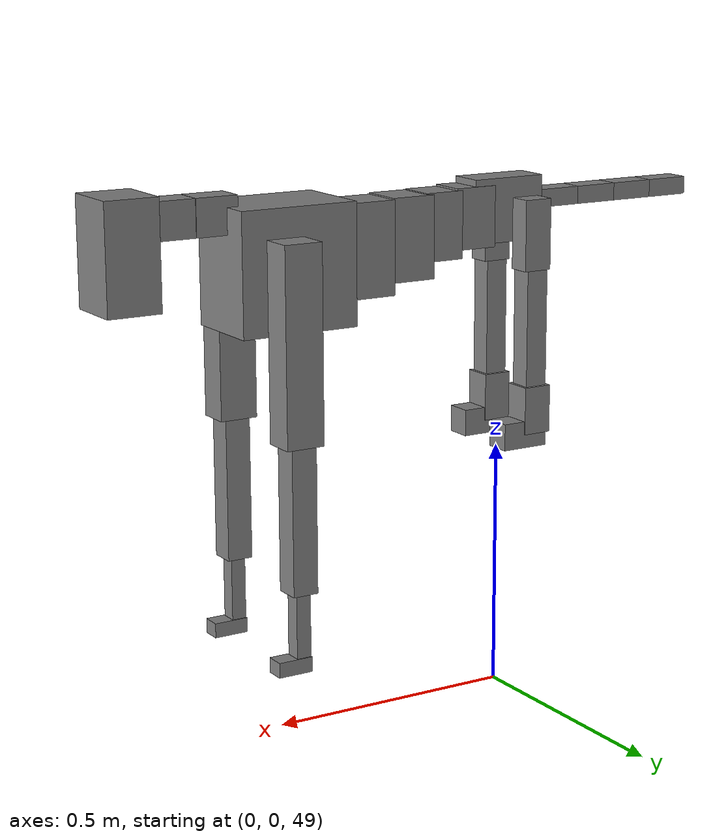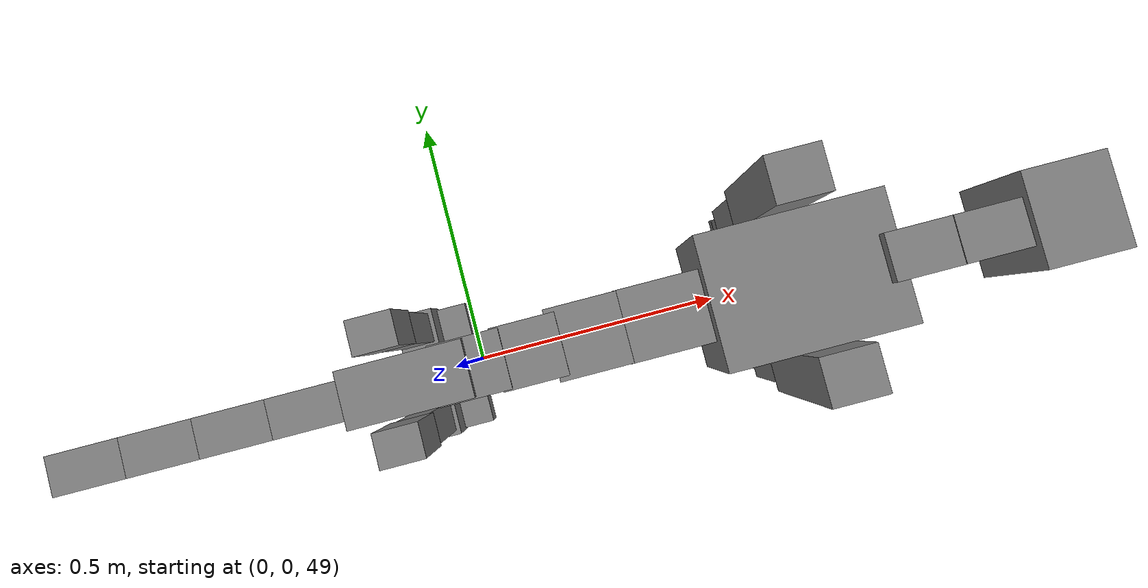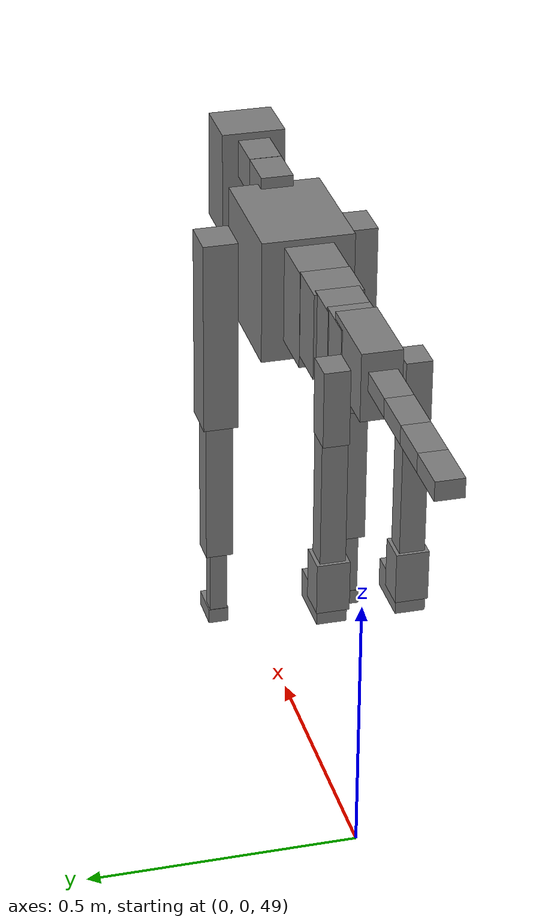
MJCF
<mujoco model="dog">

    <default>
        <joint armature="0.02" stiffness="1" damping="0.2" limited="true"/>
        <geom condim="3" friction="1 0.05 0.05" margin="0.01"/>
        <motor ctrllimited="true" ctrlrange="-1.0 1.0" forcelimited="true" gear="50"/>
    </default>

    <compiler inertiafromgeom="true" angle="radian"/>

    <option timestep="0.016" iterations="50" tolerance="1e-10" solver="Newton" jacobian="dense" cone="pyramidal"/>

    <size nconmax="20000" njmax="60000" nstack="5000000"/>
    <visual>
        <map force="0.1" zfar="30"/>
        <rgba haze="0.15 0.25 0.35 1"/>
        <quality shadowsize="2048"/>
        <global offwidth="800" offheight="800"/>
    </visual>

    <asset>
        <texture type="skybox" builtin="gradient" rgb1="0.3 0.5 0.7" rgb2="0 0 0" width="512" height="512"/>
        <texture name="texplane" type="2d" builtin="checker" rgb1=".2 .3 .4" rgb2=".1 0.15 0.2" width="512" height="512"
                 mark="cross" markrgb=".8 .8 .8"/>
        <texture name="texgeom" type="cube" builtin="flat" mark="cross" width="127" height="1278" rgb1="0.8 0.6 0.4"
                 rgb2="0.8 0.6 0.4" markrgb="1 1 1" random="0.01"/>

        <material name="matplane" reflectance="0.3" texture="texplane" texrepeat="1 1" texuniform="true"/>
        <material name="matgeom" texture="texgeom" texuniform="true" rgba="0.8 0.6 .4 1"/>
    </asset>

    <worldbody>
        <geom name="floor" pos="0 0 0" size="0 0 .25" type="plane" material="matplane" condim="3"/>

        <light directional="false" diffuse=".2 .2 .2" specular="0 0 0" pos="0 0 5" dir="0 0 -1" castshadow="false"/>
        <light mode="targetbodycom" target="torso" directional="false" diffuse=".8 .8 .8" specular="0.3 0.3 0.3"
               pos="0 0 4.0" dir="0 0 -1"/>

        <body name="root" pos="0 0 50">
            <freejoint name="root_1"/>
            <geom type="box" pos="0 0 -0.02" size="0.0774  0.0358  0.063" density="2030"/>

            <body name="spine1" pos="0.054 0 0">
                <joint name="spine1_y" axis="0 1 0" range="0 0.7" limited="true"/>
                <geom type="box" pos="0.02375 0 -0.03" size="0.04375  0.0375  0.05985" density="2030"/>

                <body name="spine2" pos="0.0612 0 0">
                    <joint name="spine2_y" axis="0 1 0" range="-0.15 0.15" limited="true"/>
                    <geom type="box" pos="0.03555  0  -0.04" size="0.04055  0.039  0.06615" density="2030"/>

                    <body name="spine3" pos="0.0730 0 0">
                        <joint name="spine3_y" axis="0 1 0" range="-0.15 0.15" limited="true"/>
                        <geom type="box" pos="0.03555  0  -0.057" size="0.04555  0.0445  0.081" density="2030"/>

                        <body name="spine4" pos="0.0780 0 0">
                            <joint name="spine4_y" axis="0 1 0" range="-0.15 0.15" limited="true"/>
                            <geom type="box" pos="0.05265  0  -0.07" size="0.05265  0.045  0.09135" density="2030"/>

                            <body name="torso" pos="0.1082 0 0">
                                <joint name="torso_y" axis="0 1 0" range="-0.15 0.15" limited="true"/>
                                <geom type="box" pos="0.11925  0  -0.085" size="0.11925  0.085  0.11745"
                                      density="2030"/>

                                <body name="neck1" pos="0.2160  0   0.0180">
                                    <joint name="neck1_y" axis="0 1 0" range="-1.2  -1" limited="true"/>
                                    <geom type="box" pos="0.0423  0  0" size="0.0423  0.03  0.036" density="2325"/>

                                    <body name="neck2" pos="0.0853  0  0">
                                        <joint name="neck2_y" axis="0 1 0" range="0.1  0" limited="true"/>
                                        <geom type="box" pos="0.0423  0  0" size="0.0423  0.03  0.036" density="2325"/>

                                        <body name="head" pos="0.0853  0  0">
                                            <joint name="head_y" axis="0 1 0" range="-0.3  -0.2" limited="true"/>
                                            <geom type="box" pos="0.0531  0  -0.055" size="0.0531  0.06  0.1044"
                                                  density="4030"/>

                                        </body>
                                    </body>
                                </body>

                                <body name="front_shoulder" pos="0.156  0   -0.0480">
                                    <joint name="front_shoulder_y" axis="0 1 0" range="-1 1.5" limited="true"/>
                                    <geom type="box" pos="0 0.13 -0.1621" size="0.0383  0.0327  0.1887" density="1158"/>
                                    <geom type="box" pos="0 -0.13 -0.1621" size="0.0383  0.0327  0.1887"
                                          density="1158"/>

                                    <body name="front_elbow" pos="0  0  -0.3242">
                                        <joint name="front_elbow_y" axis="0 1 0" range="-2 0" limited="true"/>
                                        <geom type="box" pos="0 0.13 -0.1548" size="0.0256  0.0262  0.1548"
                                              density="1081"/>
                                        <geom type="box" pos="0 -0.13 -0.1548" size="0.0256  0.0262  0.1548"
                                              density="1081"/>

                                        <body name="front_wrist" pos="0  0  -0.3097">
                                            <joint name="front_wrist_y" axis="0 1 0" range="-0.2 0" limited="true"/>
                                            <geom type="box" pos="0 0.13 -0.0702" size="0.0148  0.0165  0.0833"
                                                  density="1664"/>
                                            <geom type="box" pos="0 -0.13 -0.0702" size="0.0148  0.0165  0.0833"
                                                  density="1664"/>

                                            <body name="front_finger_end" pos="0  0  -0.1403">
                                                <joint name="front_finger_y" axis="0 1 0" range="-0.4 1"
                                                       limited="true"/>
                                                <geom type="box" pos="0.0191  0.13  0.0003"
                                                      size="0.0350  0.0191  0.0147" density="1515"/>
                                                <geom type="box" pos="0.0191  -0.13  0.0003"
                                                      size="0.0350  0.0191  0.0147" density="1515"/>

                                            </body>

                                        </body>
                                    </body>
                                </body>

                            </body>
                        </body>
                    </body>
                </body>
            </body>

            <body name="back_hip" pos="-0.03 0 -0.018">
                <joint name="back_hip_y" axis="0 1 0" range="-1.5 0.3" limited="true"/>
                <geom type="box" pos="0 0.07 -0.0469" size="0.0291  0.0228  0.0697" density="1154"/>
                <geom type="box" pos="0 -0.07 -0.0469" size="0.0291  0.0228  0.0697" density="1154"/>

                <body name="back_knee" pos="0  0  -0.0938">
                    <joint name="back_knee_y" axis="0 1 0" range="0 2.8" limited="true"/>
                    <geom type="box" pos="0 0.07 -0.1322" size="0.0228  0.0225  0.1477" density="1227"/>
                    <geom type="box" pos="0 -0.07 -0.1322" size="0.0228  0.0225  0.1477" density="1227"/>

                    <body name="back_ankle" pos="0  0  -0.2643">
                        <joint name="back_ankle_y" axis="0 1 0" range="-2.2 0" limited="true"/>
                        <geom type="box" pos="0 0.07 -0.0360" size="0.0291  0.0291  0.0473" density="1284"/>
                        <geom type="box" pos="0 -0.07 -0.0360" size="0.0291  0.0291  0.0473" density="1284"/>

                        <body name="back_toe_end" pos="0  0  -0.0720">
                            <joint name="back_toe_y" axis="0 1 0" range="-0.4 1" limited="true"/>
                            <geom type="box" pos="0.0264  0.07  -0.0117" size="0.0485  0.0264  0.0267" density="1515"/>
                            <geom type="box" pos="0.0264  -0.07  -0.0117" size="0.0485  0.0264  0.0267" density="1515"/>

                        </body>
                    </body>
                </body>
            </body>

            <body name="tail1" pos="-0.074 0 -0.006">
                <joint name="tail1_y" axis="0 1 0" range="-0.2 0.2" limited="true"/>
                <geom type="box" pos="-0.0536  0  0" size="0.045  0.025  0.0175" density="1587"/>

                <body name="tail2" pos="-0.09 0 0">
                    <joint name="tail2_y" axis="0 1 0" range="-0.2 0.2" limited="true"/>
                    <geom type="box" pos="-0.0536  0  0" size="0.045  0.025  0.0175" density="1587"/>

                    <body name="tail3" pos="-0.09 0 0">
                        <joint name="tail3_y" axis="0 1 0" range="-0.2 0.2" limited="true"/>
                        <geom type="box" pos="-0.0536  0  0" size="0.045  0.025  0.0175" density="1587"/>

                        <body name="tail4" pos="-0.09 0 0">
                            <joint name="tail4_y" axis="0 1 0" range="-0.2 0.2" limited="true"/>
                            <geom type="box" pos="-0.0536  0  0" size="0.045  0.025  0.0175" density="1587"/>

                        </body>
                    </body>
                </body>
            </body>
        </body>
    </worldbody>

    <actuator>
        <motor joint="spine1_y" forcerange="-150 150     "/>
        <motor joint="spine2_y" forcerange="-150 150     "/>
        <motor joint="spine3_y" forcerange="-150 150     "/>
        <motor joint="spine4_y" forcerange="-150 150     "/>
        <motor joint="torso_y" forcerange="-150 150     "/>
        <motor joint="neck1_y" forcerange="-100 100       "/>
        <motor joint="neck2_y" forcerange="-100 100       "/>
        <motor joint="head_y" forcerange="-150 150       "/>
        <motor joint="front_shoulder_y" forcerange="-167.84 150.43"/>
        <motor joint="front_elbow_y" forcerange="-143.08 147.32"/>
        <motor joint="front_wrist_y" forcerange="-66.95 64.97"/>
        <motor joint="front_finger_y" forcerange="-34.71 27.05"/>
        <motor joint="back_hip_y" forcerange="-265.68 238.50"/>
        <motor joint="back_knee_y" forcerange="-271.14 256.18"/>
        <motor joint="back_angle_y" forcerange="-124.17 241.84"/>
        <motor joint="back_toe_y" forcerange="-82.89 48.60"/>
        <motor joint="tail1_y" forcerange="-50 50     "/>
        <motor joint="tail2_y" forcerange="-50 50     "/>
        <motor joint="tail3_y" forcerange="-50 50     "/>
        <motor joint="tail4_y" forcerange="-50 50     "/>
    </actuator>
</mujoco>
